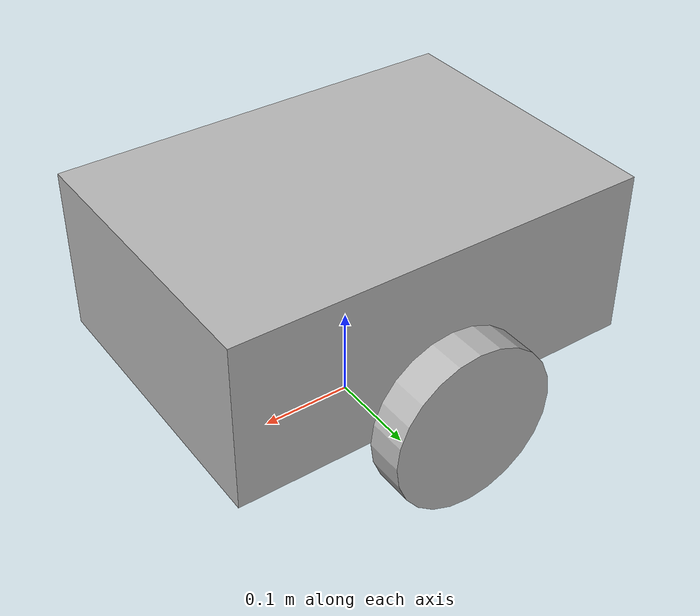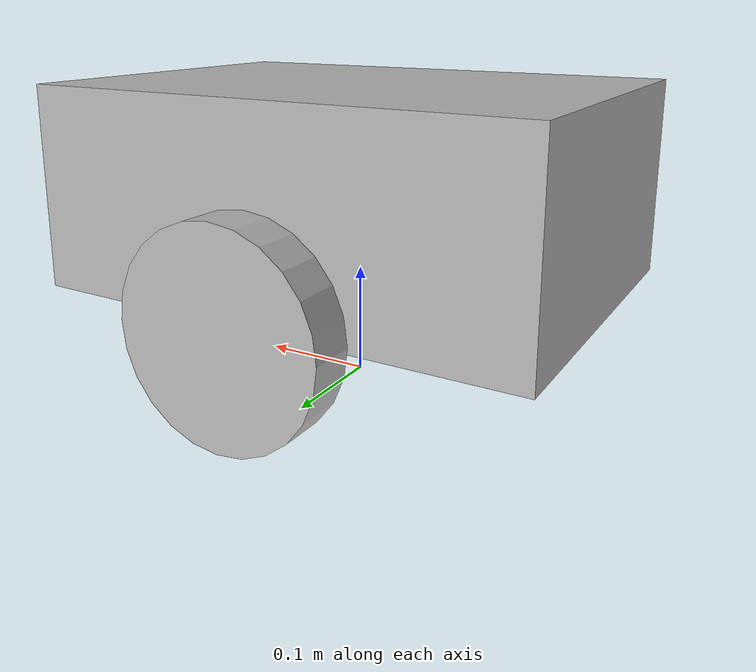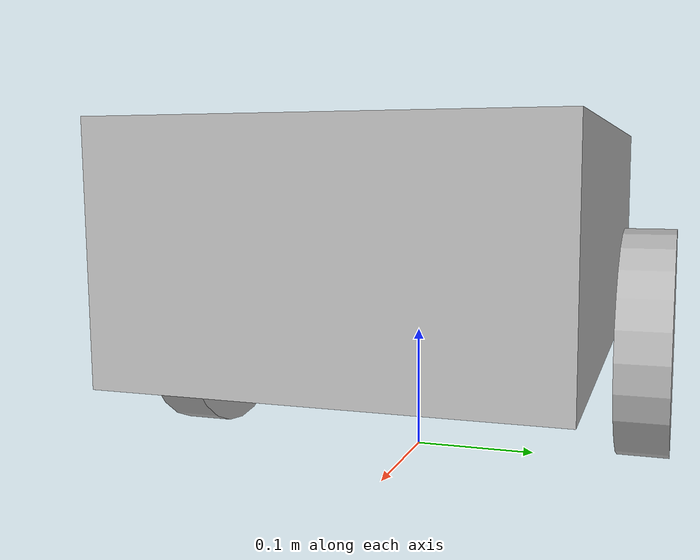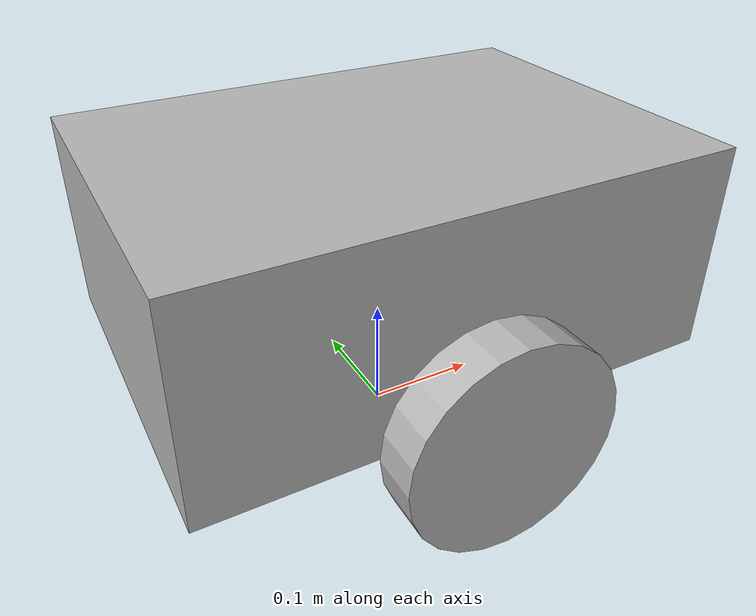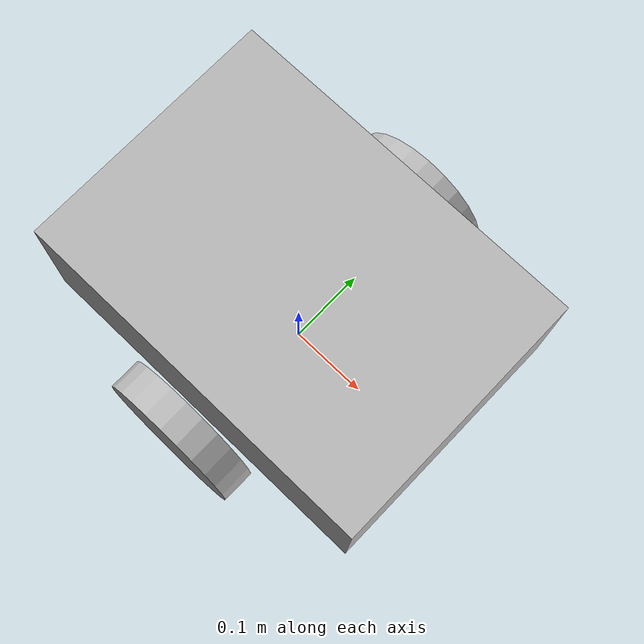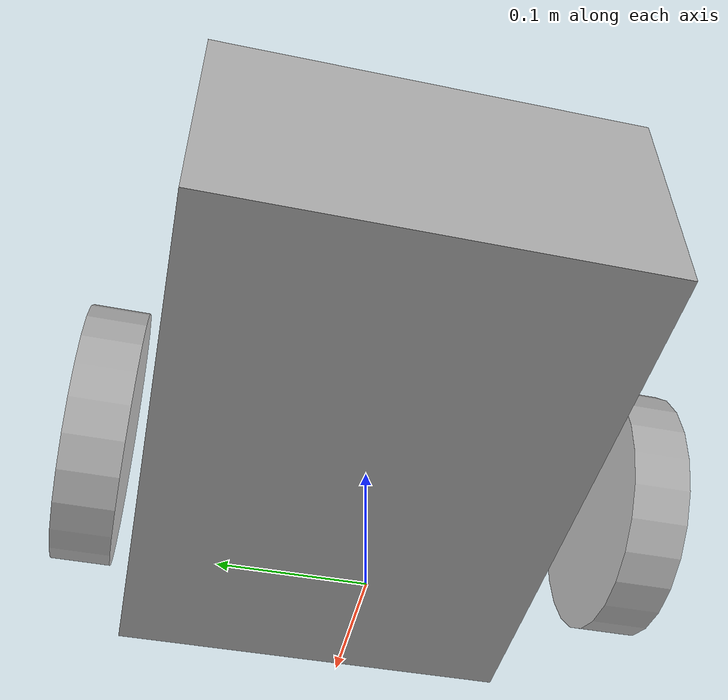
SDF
<?xml version="1.0"?>
<sdf version="1.9"><model name="lsy_bot"><pose>0 0 0.18 0 0 0</pose>
<link name="base_link"><inertial><mass>5</mass><inertia><ixx>0.08</ixx><iyy>0.08</iyy><izz>0.10</izz></inertia></inertial><collision name="c"><geometry><box><size>0.45 0.32 0.18</size></box></geometry></collision><visual name="v"><geometry><box><size>0.45 0.32 0.18</size></box></geometry></visual></link>
<link name="left_wheel"><pose>0 0.19 -0.08 1.5708 0 0</pose><collision name="c"><geometry><cylinder><radius>0.09</radius><length>0.04</length></cylinder></geometry></collision><visual name="v"><geometry><cylinder><radius>0.09</radius><length>0.04</length></cylinder></geometry></visual></link>
<link name="right_wheel"><pose>0 -0.19 -0.08 1.5708 0 0</pose><collision name="c"><geometry><cylinder><radius>0.09</radius><length>0.04</length></cylinder></geometry></collision><visual name="v"><geometry><cylinder><radius>0.09</radius><length>0.04</length></cylinder></geometry></visual></link>
<joint name="left_wheel_joint" type="revolute"><parent>base_link</parent><child>left_wheel</child><axis><xyz>0 1 0</xyz></axis></joint>
<joint name="right_wheel_joint" type="revolute"><parent>base_link</parent><child>right_wheel</child><axis><xyz>0 1 0</xyz></axis></joint>
<link name="lidar"><pose>0.12 0 0.15 0 0 0</pose><sensor name="lidar" type="gpu_lidar"><topic>scan</topic><update_rate>10</update_rate><ray><scan><horizontal><samples>360</samples><resolution>1</resolution><min_angle>-3.14159</min_angle><max_angle>3.14159</max_angle></horizontal></scan><range><min>0.12</min><max>10</max><resolution>0.01</resolution></range></ray><always_on>true</always_on></sensor></link>
<joint name="lidar_joint" type="fixed"><parent>base_link</parent><child>lidar</child></joint>
<plugin filename="gz-sim-diff-drive-system" name="gz::sim::systems::DiffDrive"><left_joint>left_wheel_joint</left_joint><right_joint>right_wheel_joint</right_joint><wheel_separation>0.38</wheel_separation><wheel_radius>0.09</wheel_radius><topic>cmd_vel</topic><odom_topic>odom</odom_topic><frame_id>odom</frame_id><child_frame_id>base_link</child_frame_id></plugin>
</model></sdf>
